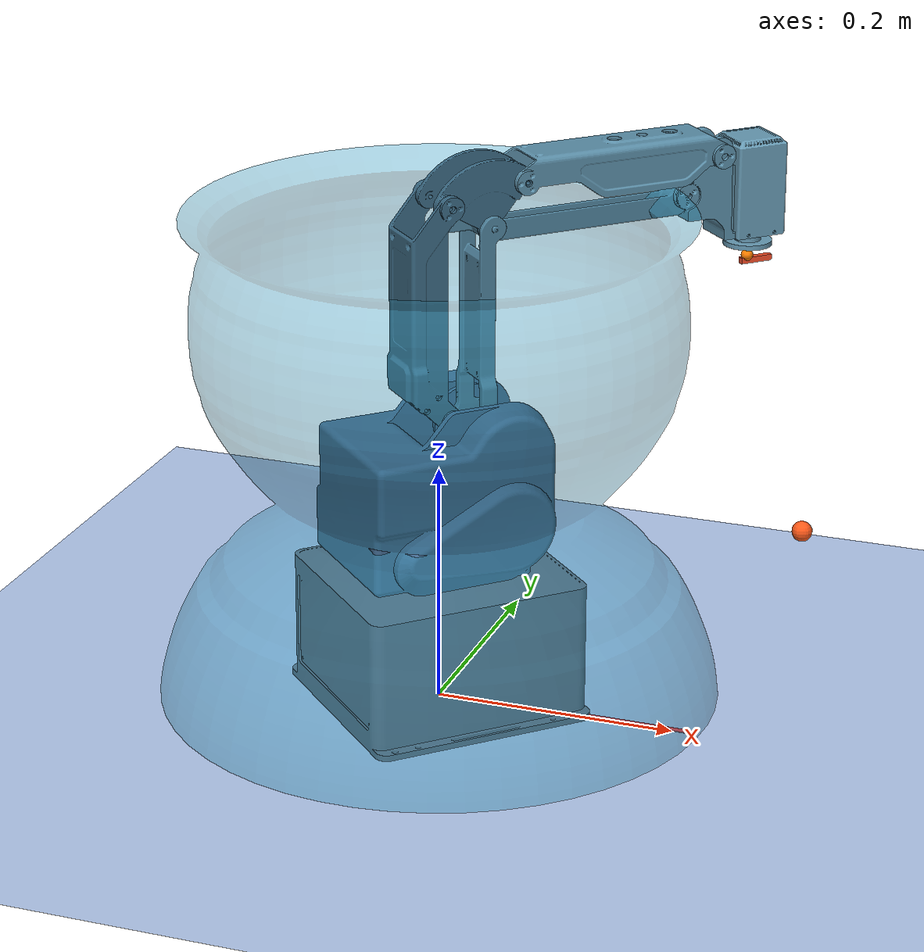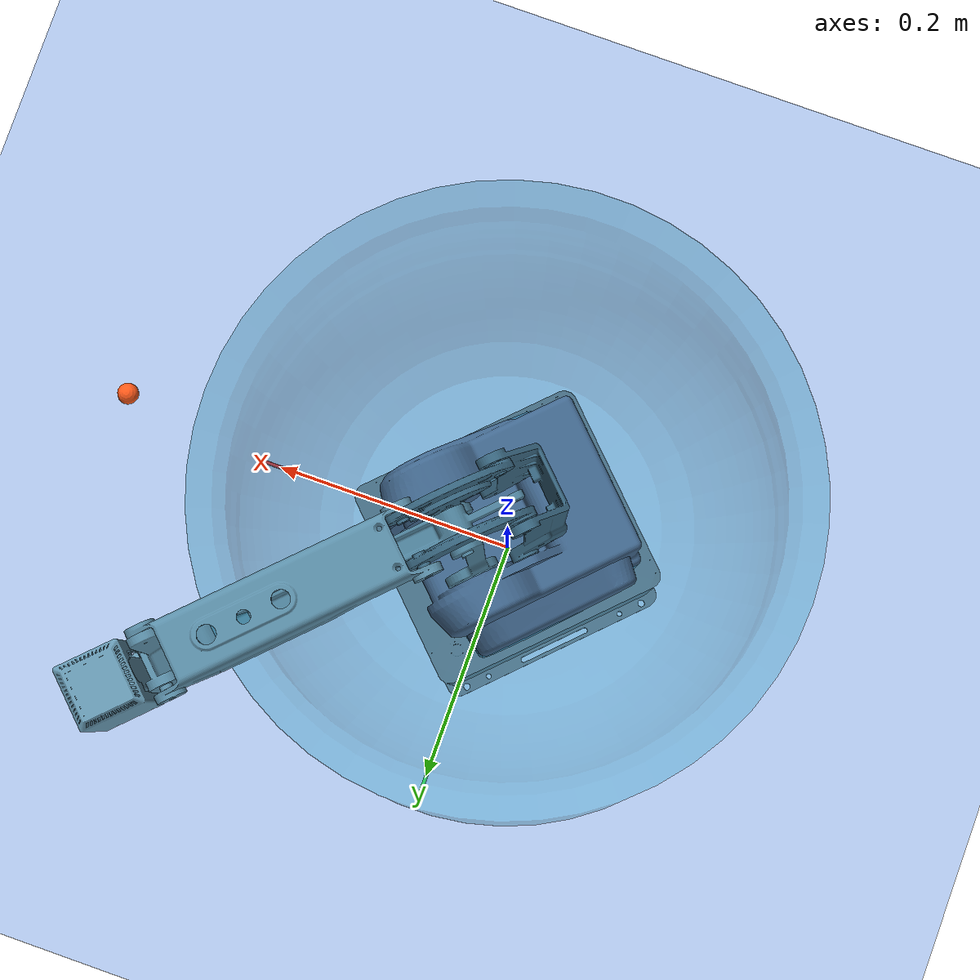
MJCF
<mujoco model="MG400_URDF">
  <compiler angle="degree" meshdir="urdf_meshes"/>

  <option timestep="0.001" integrator="RK4" gravity="0 0 -9.81"/>

  <default>
    <geom contype="0" conaffinity="0" condim="3"/>
    <joint damping="1.5" armature="0.05"/>
    <position kp="200" kv="25"/>
  </default>

  <visual>
    <map fogstart="5" fogend="8" znear="0.001"/>
    <global offwidth="1200" offheight="900"/>
  </visual>

  <asset>
    <texture name="tex_sky" type="skybox" builtin="gradient"
             rgb1="0.55 0.65 0.85" rgb2="0.85 0.90 0.95" width="512" height="512"/>
    <texture name="tex_floor" type="2d" builtin="checker"
             rgb1="0.45 0.60 0.85" rgb2="0.94 0.96 1.00" width="256" height="256"/>
    <material name="mat_floor" texture="tex_floor" texrepeat="24 24"
              specular="0.15" shininess="0.1" reflectance="0.05"/>

    <mesh name="m_base"   file="base_link.stl"/>
    <mesh name="m_link1"  file="link1.stl"/>
    <mesh name="m_link21" file="link2_1.stl"/>
    <mesh name="m_link22" file="link2_2.stl"/>
    <mesh name="m_link31" file="link3_1.stl"/>
    <mesh name="m_link32" file="link3_2.stl"/>
    <mesh name="m_link41" file="link4_1.stl"/>
    <mesh name="m_link42" file="link4_2.stl"/>
    <mesh name="m_link43" file="link4_3.stl"/>
    <mesh name="m_link5"  file="link5.stl"/>
    <mesh name="m_flange" file="flange.stl"/>

    <mesh name="m_workspace" file="workspace_cage.obj"/>
    <material name="mat_workspace" rgba="0.20 0.60 0.75 0.40" specular="0.10" shininess="0.10"/>

    <material name="mat_base"   rgba="0.35 0.35 0.40 1" specular="0.4" shininess="0.4"/>
    <material name="mat_j1"     rgba="0.25 0.40 0.55 1" specular="0.4" shininess="0.4"/>
    <material name="mat_main"   rgba="0.30 0.50 0.60 1" specular="0.4" shininess="0.4"/>
    <material name="mat_para"   rgba="0.22 0.40 0.50 1" specular="0.3" shininess="0.3"/>
    <material name="mat_j4"     rgba="0.35 0.55 0.65 1" specular="0.4" shininess="0.4"/>
    <material name="mat_j5"     rgba="0.40 0.60 0.70 1" specular="0.4" shininess="0.4"/>
    <material name="mat_joint"  rgba="0.85 0.35 0.15 1" specular="0.5" shininess="0.6"/>
  </asset>

  <worldbody>
    <light name="light_key" directional="true" diffuse="0.75 0.75 0.75"
           specular="0.3 0.3 0.3" pos="2 1.5 3" dir="-0.5 -0.3 -1"/>
    <light name="light_fill" directional="true" diffuse="0.25 0.25 0.3"
           specular="0.05 0.05 0.05" pos="-1.5 1 2" dir="0.4 -0.2 -1"/>

    <geom name="floor" type="plane" pos="0 0 0" size="3 3 0.1"
          material="mat_floor" contype="1" conaffinity="1"/>

    <!-- 1000mm*1000mm 半透明阴影区, 世界中心 -->
    <geom name="shadow" type="plane" pos="0 0 0.0005" size="0.5 0.5 0.1"
          rgba="0.05 0.08 0.15 0.50" contype="0" conaffinity="0"/>

    <!-- 工作空间包络 cage — 内边界, 标记不可达区域 -->
    <geom name="workspace_cage" type="mesh" mesh="m_workspace" pos="0 0 0"
          material="mat_workspace" contype="0" conaffinity="0" euler="0 0 0"/>

    <!-- 目标点标记 (mocap, 控制面板发送目标后显示) -->
    <body name="target_marker" mocap="true" pos="0.3 0 0.19">
      <geom name="target_dot" type="sphere" size="0.008" rgba="1 0.35 0.1 0.9" contype="0" conaffinity="0"/>
    </body>

    <!-- 障碍物 (操作员手臂) — 水平横放, mocap 可拖动, 默认隐藏 -->
    <body name="obstacle" mocap="true" pos="0.28 -0.08 0.28">
      <geom name="obstacle_geom" type="cylinder" size="0.025"
            fromto="-0.12 0 0  0.12 0 0"
            rgba="1 0.2 0.1 0.0" contype="1" conaffinity="1"/>
      <site name="obstacle_center" pos="0 0 0" size="0.005" type="sphere" rgba="1 0 0 0"/>
    </body>

    <!-- Frame0: 世界中心, 细长坐标轴 -->
    <body name="frame0" pos="0 0 0.002" mocap="true">
      <geom name="f0_x" type="cylinder" size="0.0015" fromto="0 0 0  0.22 0 0"
            rgba="1 0.15 0.15 0.9" contype="0" conaffinity="0"/>
      <geom name="f0_y" type="cylinder" size="0.0015" fromto="0 0 0  0 0.22 0"
            rgba="0.15 1 0.15 0.9" contype="0" conaffinity="0"/>
      <geom name="f0_z" type="cylinder" size="0.0015" fromto="0 0 0  0 0 0.22"
            rgba="0.15 0.15 1 0.9" contype="0" conaffinity="0"/>
      <site name="S0" pos="0 0 0" size="0.004" type="sphere" rgba="1 1 1 0.95"/>
    </body>

    <!-- ═══ base_link — 世界中心, 机身沿对角线45° ═══ -->
    <body name="base" pos="0 0 0" euler="0 0 45">
      <geom name="base_mesh" type="mesh" mesh="m_base" pos="0 0 0" material="mat_base" euler="0 0 0"/>

      <!-- J1: URDF origin (-0.005, 0, 0.109) from base_link -->
      <body name="link1" pos="-0.005 0 0.109">
        <joint name="J1" type="hinge" axis="0 0 1" range="-160 160"/>
        <geom name="j1_mesh" type="mesh" mesh="m_link1" pos="0 0 0" material="mat_j1" euler="0 0 0"/>

        <!-- 主链: link1 → J2 → link2_1 → J3 → fake_link → J31 → link3_1 → J41 → link4_1 → J4 → link5 -->

        <!-- J2: (0.0435, -0.035775, 0.119) from link1 -->
        <body name="link2_1" pos="0.0435 -0.035775 0.119">
          <joint name="J2" type="hinge" axis="0 1 0" range="-25 85"/>
          <geom name="j2_mesh" type="mesh" mesh="m_link21" pos="0 0 0" material="mat_main" euler="0 0 0"/>

          <!-- J3: (-0.00105, 0.035775, 0.175) from link2_1 → fake_link -->
          <body name="fake_link" pos="-0.00105 0.035775 0.175">
            <joint name="J3" type="hinge" axis="0 1 0" range="-25 105"/>
            <geom name="fake_mass" type="sphere" size="0.001" rgba="0 0 0 0" mass="0.001"/>

            <!-- J31: fake_link → link3_1, origin not specified = (0,0,0), mimic -J2 -->
            <body name="link3_1" pos="0 0 0">
              <joint name="J31" type="hinge" axis="0 1 0" range="-180 180"/>
              <geom name="j3_mesh" type="mesh" mesh="m_link31" pos="0 0 0" material="mat_main" euler="0 0 0"/>

              <!-- J41: (0.175, -0.017, 0.00325) from link3_1 → link4_1, mimic -J3 -->
              <body name="link4_1" pos="0.175 -0.017 0.00325">
                <joint name="J41" type="hinge" axis="0 1 0" range="-180 180"/>
                <geom name="j4_mesh" type="mesh" mesh="m_link41" pos="0 0 0" material="mat_j4" euler="0 0 0"/>
                <!-- 腕部外壳固定在 link4_1, 不随 J4 旋转 -->
                <geom name="wrist_housing" type="mesh" mesh="m_link5" pos="0.066 0.017 0.031" material="mat_j5" euler="0 0 0"/>
                <geom name="wrist_housing2" type="mesh" mesh="m_link43" pos="0.066 0.017 0.033" material="mat_j5" euler="0 0 0"/>

                <!-- J4: (0.066, 0.017, 0.031) from link4_1 → link5, Z-axis -->
                <body name="link5" pos="0.066 0.017 0.031">
                  <joint name="J4" type="hinge" axis="0 0 1" range="-180 180"/>
                  <!-- 仅法兰盘随 J4 旋转 -->
                  <geom name="link5_placeholder" type="sphere" size="0.003" rgba="0 0 0 0" mass="0.01"/>

                  <!-- flange: fixed on link5, offset (0, 0, -0.084) -->
                  <body name="flange" pos="0 0 -0.084">
                    <geom name="flange_mesh" type="mesh" mesh="m_flange" pos="0 0 0" material="mat_j5" euler="0 0 0"/>
                    <!-- J4 旋转指示器: 法兰盘底部横条, 随法兰旋转 -->
                    <geom name="j4_indicator" type="box" size="0.014 0.0025 0.0025"
                          pos="0.008 0 -0.014" rgba="0.95 0.3 0.15 1"
                          contype="0" conaffinity="0"/>
                    <site name="tcp" pos="0 0 -0.01" size="0.005" type="sphere" rgba="1 0.5 0 0.95"/>
                  </body>
                </body>
              </body>
            </body>
          </body>
        </body>

        <!-- 并行链: link1 → J22 → link2_2 → J32 → link3_2 → J42 → link4_2 -->

        <!-- J22: (0.004529, -0.0305, 0.1415) from link1, mimic J2 -->
        <body name="link2_2" pos="0.004529 -0.0305 0.1415">
          <joint name="J22" type="hinge" axis="0 1 0" range="-180 180"/>
          <geom name="j22_mesh" type="mesh" mesh="m_link22" pos="0 0 0" material="mat_para" euler="0 0 0"/>

          <!-- J32: (-0.00105, 0.0065, 0.175) from link2_2, mimic -J2 -->
          <body name="link3_2" pos="-0.00105 0.0065 0.175">
            <joint name="J32" type="hinge" axis="0 1 0" range="-180 180"/>
            <geom name="j32_mesh" type="mesh" mesh="m_link32" pos="0 0 0" material="mat_para" euler="0 0 0"/>

            <!-- J42: (0.0679, 0.0005, 0.01197) from link3_2, mimic J3 -->
            <body name="link4_2" pos="0.0679 0.0005 0.011972">
              <joint name="J42" type="hinge" axis="0 1 0" range="-180 180"/>
              <geom name="j42_mesh" type="mesh" mesh="m_link42" pos="0 0 0" material="mat_j4" euler="0 0 0"/>
            </body>
          </body>
        </body>
      </body>
    </body>
  </worldbody>

  <!-- Mimic constraints matching URDF mimic/multiplier -->
  <equality>
    <joint name="eq_J22" joint1="J2"  joint2="J22" polycoef="0 1 0 0 0"/>
    <joint name="eq_J32" joint1="J2"  joint2="J32" polycoef="0 -1 0 0 0"/>
    <joint name="eq_J31" joint1="J2"  joint2="J31" polycoef="0 -1 0 0 0"/>
    <joint name="eq_J42" joint1="J3"  joint2="J42" polycoef="0 1 0 0 0"/>
    <joint name="eq_J41" joint1="J3"  joint2="J41" polycoef="0 -1 0 0 0"/>
  </equality>

  <!-- 4-DOF actuators: J1, J2, J3, J4 -->
  <actuator>
    <position name="ctrl_J1" joint="J1" kp="400" kv="25" ctrlrange="-3.1416 3.1416"/>
    <position name="ctrl_J2" joint="J2" kp="800" kv="35" ctrlrange="-0.436 1.484"/>
    <position name="ctrl_J3" joint="J3" kp="600" kv="25" ctrlrange="-0.436 1.833"/>
    <position name="ctrl_J4" joint="J4" kp="30"  kv="5"  ctrlrange="-3.1416 3.1416"/>
  </actuator>

  <sensor>
    <jointpos name="J1_pos" joint="J1"/>
    <jointvel name="J1_vel" joint="J1"/>
    <jointpos name="J2_pos" joint="J2"/>
    <jointvel name="J2_vel" joint="J2"/>
    <jointpos name="J3_pos" joint="J3"/>
    <jointvel name="J3_vel" joint="J3"/>
    <framepos name="TCP_pos" objtype="site" objname="tcp"/>
  </sensor>
</mujoco>
